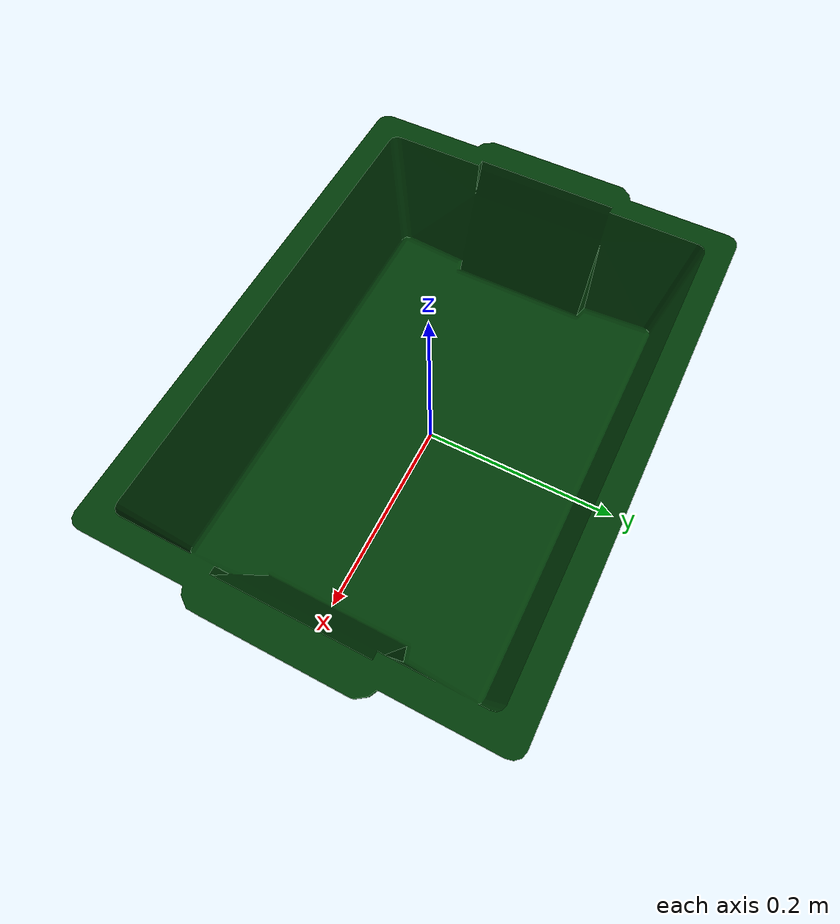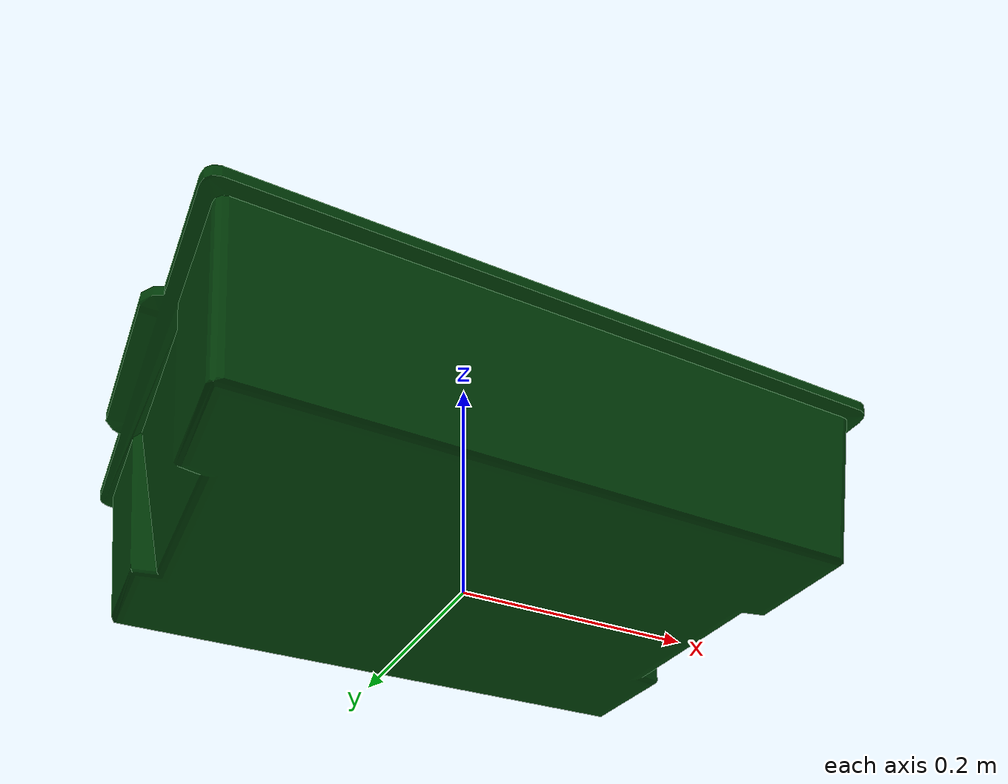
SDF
<?xml version="1.0" ?>
<sdf version='1.4'>
  <model name="screw_bin">
      <static>0</static>
      <link name='link'>
        <inertial>
          <!-- Weight = 1.7lb -> 0.771107kg-->
          <mass>0.771107</mass>
          <inertia>
            <ixx>0.010364</ixx>
            <ixy>0.000000</ixy>
            <ixz>0.000000</ixz>
            <iyy>0.017619</iyy>
            <iyz>0.000000</iyz>
            <izz>0.025911</izz>
          </inertia>
        </inertial>
        <collision name='collision'>
          <geometry>
            <mesh>
              <uri>model://screw_bin/meshes/screw_bin.stl</uri>
              <scale>1 1 1</scale>
            </mesh>
          </geometry>
          <surface>
            <friction>
              <ode>
                <mu>30.0</mu>
                <mu2>30.0</mu2>
              </ode>
            </friction>
          </surface>
        </collision>
        <visual name='visual'>
          <geometry>
            <mesh>
              <uri>model://screw_bin/meshes/screw_bin.dae</uri>
              <scale>1 1 1</scale>
            </mesh>
          </geometry>
        </visual>
        <velocity_decay>
          <linear>0.000000</linear>
          <angular>0.000000</angular>
        </velocity_decay>
        <self_collide>0</self_collide>
        <kinematic>0</kinematic>
        <gravity>1</gravity>
      </link>
  </model>
</sdf>
